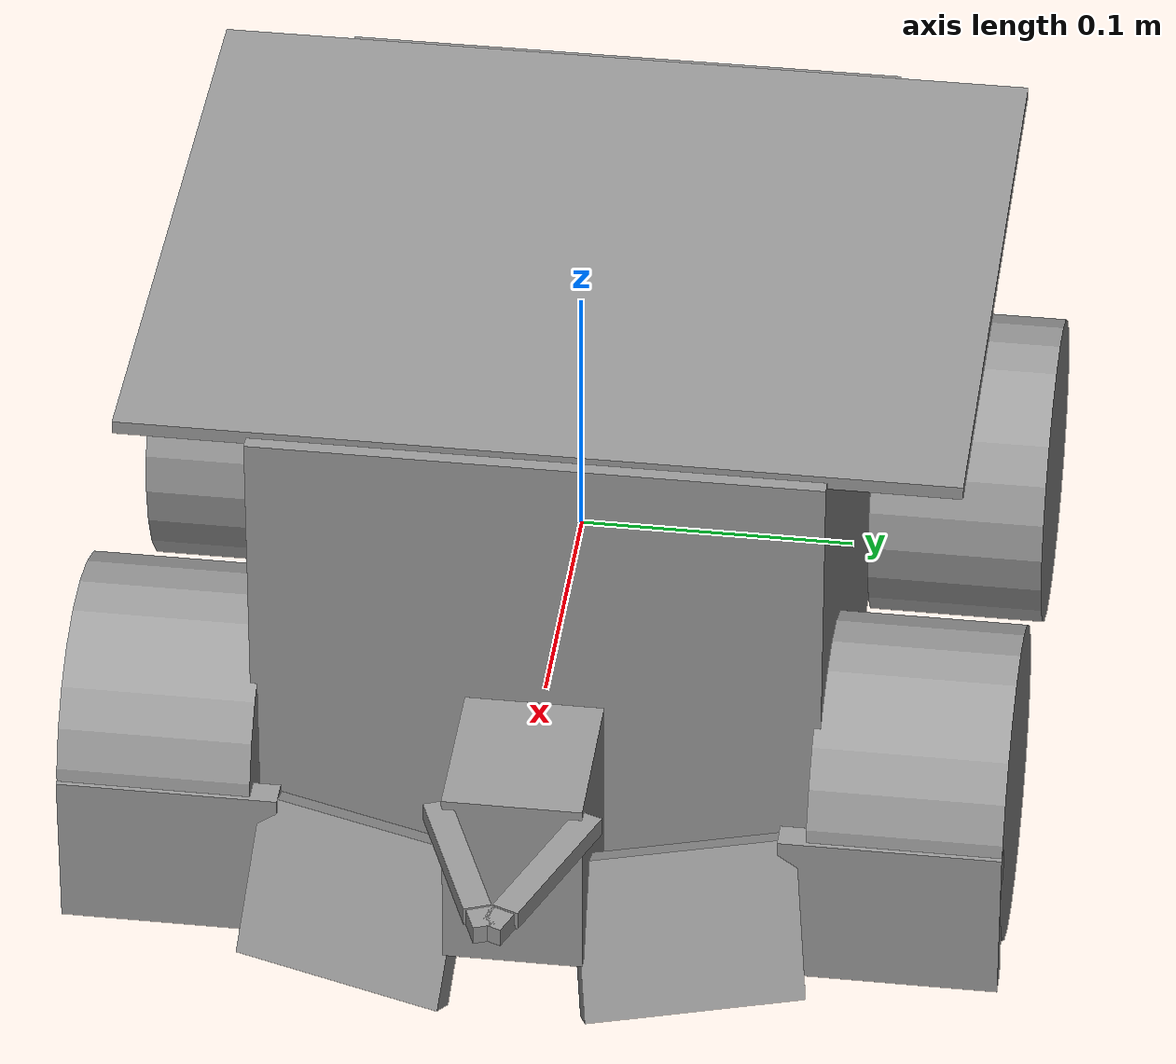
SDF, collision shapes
<?xml version='1.0'?>
<sdf version='1.4'>
	<model name="achilles">

		<static>false</static>

		<link name='base_link'>
			<inertial>
				<mass>3</mass>
				<inertia>
					<ixx>0.006</ixx>
					<ixy>0.0</ixy>
					<ixz>0.0</ixz>
					<iyy>0.006</iyy>
					<iyz>0.0</iyz>
					<izz>0.006</izz>
				</inertia>
			</inertial>
			<collision name='base_link_collision'>
				<pose>0 0 0.03 0 0 0</pose>
				<geometry>
					<box>
						<size>0.26 0.205 0.18</size>
					</box>
				</geometry>
			</collision>

			<visual name='base_link_visual'>
				<pose>0 0 -0.06 0 0 0</pose>
				<geometry>
					<mesh>
						<uri>model://swarmie/meshes/Body.stl</uri>
					</mesh>
				</geometry>
				<material>
					<script>
						<name>Gazebo/Grey</name>
					</script>
				</material>
			</visual>

			<sensor type="ray" name="us_left_sensor">
				<pose>0.15 0.07 0.053 0.0 0.0 0.43633</pose>
				<visualize>false</visualize>
				<update_rate>5</update_rate>
				<ray>
					<scan>
						<horizontal>
							<samples>3</samples>
							<resolution>1.0</resolution>
							<min_angle>-.478</min_angle>
							<max_angle>0.478</max_angle>
						</horizontal>
					</scan>
					<range>
						<min>0.010</min>
						<max>3</max>
						<resolution>0.01</resolution>
					</range>
				</ray>
				<plugin name="us" filename="libhector_gazebo_ros_sonar.so">
					<gaussianNoise>0.005</gaussianNoise>
					<topicName>/achilles/sonarLeft</topicName>
					<frameId>us_center_link</frameId>
				</plugin>
			</sensor>
			<sensor type="ray" name="us_right_sensor">
				<pose>0.15 -0.07 0.053 0.0 0.0 -0.43633</pose>
				<visualize>false</visualize>
				<update_rate>5</update_rate>
				<ray>
					<scan>
						<horizontal>
							<samples>3</samples>
							<resolution>1.0</resolution>
							<min_angle>-.478</min_angle>
							<max_angle>0.478</max_angle>
						</horizontal>
					</scan>
					<range>
						<min>0.010</min>
						<max>3</max>
						<resolution>0.01</resolution>
					</range>
				</ray>
				<plugin name="us" filename="libhector_gazebo_ros_sonar.so">
					<gaussianNoise>0.005</gaussianNoise>
					<topicName>/achilles/sonarRight</topicName>
					<frameId>us_center_link</frameId>
				</plugin>
			</sensor>
			<sensor type="ray" name="us_center_sensor">
				<pose>0.15 0 0.053 0 0 0</pose>
				<visualize>false</visualize>
				<update_rate>5</update_rate>
				<ray>
					<scan>3.0
						<horizontal>
							<samples>3</samples>
							<resolution>1.0</resolution>
							<min_angle>-.478</min_angle>
							<max_angle>0.478</max_angle>
						</horizontal>
					</scan>
					<range>
						<min>0.010</min>
						<max>3</max>
						<resolution>0.01</resolution>
					</range>
				</ray>
				<plugin name="us" filename="libhector_gazebo_ros_sonar.so">
					<gaussianNoise>0.005</gaussianNoise>
					<topicName>/achilles/sonarCenter</topicName>
					<frameId>us_center_link</frameId>
				</plugin>
			</sensor>
			<sensor type="camera" name="camera">
				<pose>0.145 -0.0162 0.088 0.0 0.628 0.0</pose>
				<visualize>false</visualize>
				<update_rate>6.0</update_rate>
				<camera name="head">
					<horizontal_fov>1.0123</horizontal_fov>
					<image>
						<width>320</width>
						<height>240</height>
						<format>B8G8R8</format>
					</image>
					<clip>
						<near>0.02</near>
						<far>300</far>
					</clip>
					<noise>
						<type>gaussian</type>
						<mean>0.0</mean>
						<stddev>0.007</stddev>
					</noise>
				</camera>
				<plugin name="camera_controller" filename="libgazebo_ros_camera.so">
					<alwaysOn>true</alwaysOn>
					<updateRate>0.0</updateRate>
					<cameraName>/achilles/camera</cameraName>
					<imageTopicName>/achilles/camera/image</imageTopicName>
					<cameraInfoTopicName>/achilles/camera/info</cameraInfoTopicName>
					<frameName>camera_link</frameName>
					<hackBaseline>0.1</hackBaseline>
					<distortionK1>0.0</distortionK1>
					<distortionK2>0.0</distortionK2>
					<distortionK3>0.0</distortionK3>
					<distortionT1>0.0</distortionT1>
					<distortionT2>0.0</distortionT2>
					<CxPrime>0.0</CxPrime>
					<Cx>0.0</Cx>
					<Cy>0.0</Cy>
					<focalLength>0.0</focalLength>
				</plugin>
			</sensor>

			<collision name='top_plate_collision'>
				<pose>0 0 0.12 0 0 0</pose>
				<geometry>
					<box>
						<size>0.25 0.30 0.005</size>
					</box>
				</geometry>
			</collision>
			<visual name='top_plate_visual'>
				<pose>0.0006 0 0.12 0 0 0</pose>
				<geometry>
					<mesh>
						<uri>model://swarmie/meshes/CoverPlate.stl</uri>
					</mesh>
				</geometry>
				<material>
					<script>
						<name>Gazebo/FlatBlack</name>
					</script>
				</material>
			</visual>

			<collision name='cow_catcher_front_left_collision'>
				<pose>0.1675 0.06 -0.05 0 -0.4 0.3</pose>
				<geometry>
					<box>
					  <size>0.01 0.08 0.06</size>
					</box>
				</geometry>
			</collision>

			<collision name='wheel_guard_front_left_collision'>
				<pose>0.148 0.13 -0.05 0 0 0</pose>
				<geometry>
					<box>
					  <size>0.01 0.08 0.06</size>
					</box>
				</geometry>
			</collision>

			<collision name='cow_catcher_front_right_collision'>
				<pose>0.1675 -0.06 -0.05 0 -0.4 -0.3</pose>
				<geometry>
					<box>
					  <size>0.01 0.08 0.06</size>
					</box>
				</geometry>
			</collision>

			<collision name='wheel_guard_front_right_collision'>
				<pose>0.148 -0.13 -0.05 0 0 0</pose>
				<geometry>
					<box>
					  <size>0.01 0.08 0.06</size>
					</box>
				</geometry>
			</collision>

			<visual name='cow_catcher_front_visual'>
				<pose>0.1675 0 -0.08 1.57079 0 0</pose>
				<geometry>
					<mesh>
						<uri>model://swarmie/meshes/CowCatcherFront.stl</uri>
						<scale>0.001 0.001 0.001</scale>
					</mesh>
				</geometry>
				<material>
					<script>
						<name>Gazebo/FlatBlack</name>
					</script>
				</material>
			</visual>

			<collision name='cow_catcher_back_lower_collision'>
				<pose>-0.1305 0.0 -0.0665 1.57079 1.05 0.0</pose>
				<geometry>
					<box>
					  <size>0.01 0.03 0.18</size>
					</box>
				</geometry>
			</collision>
			<visual name='cow_catcher_back_visual'>
				<pose>-0.1275 -0.1 -0.04 1.57079 0 3.1415</pose>
				<geometry>
					<mesh>
						<uri>model://swarmie/meshes/CowCatcherRear.stl</uri>
						<scale>0.001 0.001 0.001</scale>
					</mesh>
				</geometry>
				<material>
					<script>
						<name>Gazebo/FlatBlack</name>
					</script>
				</material>
			</visual>

		</link>

		<link name="lidar_link">
			<pose>0.5 0.5 0.5 0 0 0</pose>
			<visual name="lidar_vis">
				<geometry>
					<cylinder>
						<radius>0.1</radius>
						<length>0.1</length>
					</cylinder>
				</geometry>
			</visual>
			<inertial>
				<mass>0.1</mass>
				<inertia>
					<ixx></ixx>
					<iyy></iyy>
					<izz></izz>
					<ixy></ixy>
					<ixz></ixz>
					<iyz></iyz>
				</inertia>
			</inertial>
		</link>

		<joint type="revolute" name="lidar_joint">
			<pose>0 0 0 0 0 0</pose>
			<parent>base_link</parent>
			<child>lidar_link</child>

			<axis>
				<xyz>0 0 1</xyz>
			</axis>
		</joint>

	<link name="gripper_wrist">
			<pose>0.155 0 -0.013 0 0 0</pose>
			<inertial>
				<mass>0.03</mass>
				<inertia>
					<ixx>0.00245</ixx> <!--> 1/12*(mass)(h^2 + d^2) where h,d,w are in meters and mass is in kilograms <-->
					<ixy>0.0</ixy>
					<ixz>0.0</ixz>
					<iyy>0.00185</iyy> <!--> 1/12*(mass)(w^2 + d^2) <-->
					<iyz>0.0</iyz>
					<izz>0.00185</izz> <!--> 1/12*(mass)(w^2 + h^2) <-->
				</inertia>
			</inertial>

			<visual name="visual">
				<pose>0 0 0 0 0 0</pose>
				<geometry>
					<mesh>
						<uri>model://swarmie/meshes/GripperWrist.stl</uri>
					</mesh>
				</geometry>
				<material>
					<script>
						<name>Gazebo/Grey</name>
					</script>
				</material>
			</visual>
			<collision name="collision">
			  <pose>0.0 0 -0.0055 0 0 0</pose>
				<geometry>
					<box>
					  <size>0.07 0.05 0.07</size>
					</box>
				</geometry>
			</collision>
		</link>

		<joint name="gripper_wrist_joint" type="revolute">
			<parent>base_link</parent>
			<child>gripper_wrist</child>
			<pose>-0.0227 0 -0.0105 0 0 0</pose>
			<axis>
				<xyz>0 1 0</xyz>
				<limit>
					<upper>0.7</upper>
					<lower>0.0</lower>
				</limit>
				<dynamics>
				  <damping>0.5</damping>
				</dynamics>
			</axis>
		</joint>

		<link name="gripper_left_finger">
			<pose>0.214 0.016 0.0095 0 0 0</pose>
			<inertial>
				<mass>0.005</mass>
				<inertia>
					<ixx>0.0000833</ixx>
					<ixy>0.0</ixy>
					<ixz>0.0</ixz>
					<iyy>0.0005417</iyy>
					<iyz>0.0</iyz>
					<izz>0.0006083</izz>
				</inertia>
			</inertial>
			<collision name="collision">
				<pose>0 0 0 0 0 -0.38</pose>
				<geometry>
					<box>
						<size>0.06 0.01 0.007</size>
					</box>
				</geometry>
				<surface>
					<friction>
						<ode>
							<mu>0.8</mu>
							<mu2>0.7</mu2>
						</ode>
					</friction>
				</surface>
			</collision>
			<collision name="collision2">
				<pose>0.033 -0.014 0.000 0 0 -0.38</pose>
				<geometry>
					<box>
						<size>0.01 0.01 0.007</size>
					</box>
				</geometry>
				<surface>
					<friction>
						<ode>
							<mu>0.8</mu>
							<mu2>0.7</mu2>
						</ode>
					</friction>
				</surface>
			</collision>
			<visual name="visual">
				<pose>0 0 0 0 0 0.0</pose>
				<geometry>
					<mesh>
						<uri>model://swarmie/meshes/GripperFingerLeft.stl</uri>
					</mesh>
				</geometry>
				<material>
					<script>
						<name>Gazebo/Grey</name>
					</script>
				</material>
			</visual>
			<sensor name='finger' type='contact'>
			  <contact>
			    <collision>collision</collision>
			  </contact>
			</sensor>
		</link>

		<joint name ="gripper_left_finger_joint" type="revolute">
			<parent>gripper_wrist</parent>
			<child>gripper_left_finger</child>
			<pose>-0.0324 0.0052 0 0 0 0</pose>
			<axis>
				<xyz>0 0 1</xyz>
				<limit>
					<upper>0.7854</upper>
					<lower>0.0</lower>
				</limit>
				<dynamics>
				  <damping>0.3</damping>
				</dynamics>
			</axis>
		</joint>

		<link name="gripper_right_finger">
			<pose>0.214 -0.016 0.0095 0 0 0</pose>
			<inertial>
 				<mass>0.005</mass>
				<inertia>
					<ixx>0.0000833</ixx>
					<ixy>0.0</ixy>
					<ixz>0.0</ixz>
					<iyy>0.0005417</iyy>
					<iyz>0.0</iyz>
					<izz>0.0006083</izz>
				</inertia>
			</inertial>
			<collision name="collision">
				<pose>0 0 0 0 0 0.38</pose>
				<geometry>
					<box>
						<size>0.06 0.01 0.007</size>
					</box>
				</geometry>
				<surface>
					<friction>
						<ode>
							<mu>0.8</mu>
							<mu2>0.7</mu2>
						</ode>
					</friction>
				</surface>
			</collision>
			<collision name="collision2">
				<pose>0.033 0.014 0.000 0 0 0.38</pose>
				<geometry>
					<box>
						<size>0.01 0.01 0.007</size>
					</box>
				</geometry>
				<surface>
					<friction>
						<ode>
							<mu>0.8</mu>
							<mu2>0.7</mu2>
						</ode>
					</friction>
				</surface>
			</collision>
			<visual name="visual">3.0
				<pose>0 0 0 0 0 0</pose>
				<geometry>
					<mesh>
						<uri>model://swarmie/meshes/GripperFingerRight.stl</uri>
					</mesh>
				</geometry>
				<material>
					<script>
						<name>Gazebo/Grey</name>
					</script>
				</material>
			</visual>
			<sensor name='finger' type='contact'>
			  <contact>
			    <collision>collision</collision>
			  </contact>
			</sensor>
		</link>

		<joint name ="gripper_right_finger_joint" type="revolute">
			<parent>gripper_wrist</parent>
			<child>gripper_right_finger</child>
			<pose>-0.0324 -0.0052 0 0 0 0</pose>
			<axis>
				<xyz>0 0 1</xyz>
				<limit>
					<upper>0.0</upper>
					<lower>-0.7854</lower>
				</limit>
				<dynamics>
				  <damping>0.3</damping>
				</dynamics>
			</axis>
		</joint>

		<link name="left_front_wheel">
			<pose>0.095 0.135 -0.03 0 0 0</pose>
			<inertial>
				<mass>1.0</mass>
				<inertia>
					<ixx>0.000776</ixx>
					<ixy>0.0</ixy>
					<ixz>0.0</ixz>
					<iyy>0.0012</iyy>
					<iyz>0.0</iyz>
					<izz>0.000776</izz>
				</inertia>
			</inertial>
			<collision name="collision">
				<pose>0 0 0 1.5708 0 0</pose>
				<geometry>
					<cylinder>
						<radius>.0575</radius>
						<length>.07</length>
 					</cylinder>
				</geometry>
				<surface>
					<friction>
						<ode>
							<mu>0.8</mu>
							<mu2>0.7</mu2>
						</ode>
					</friction>
				</surface>
			</collision>
			<visual name="visual">
				<geometry>
					<mesh>
						<uri>model://swarmie/meshes/TireWheelLeft.stl</uri>
					</mesh>
				</geometry>
				<material>
					<script>
						<name>Gazebo/Grey</name>
					</script>
				</material>
			</visual>
		</link>

		<joint name="left_front" type="revolute">
			<parent>base_link</parent>
			<child>left_front_wheel</child>
			<axis>
				<xyz>0 1 0</xyz>
			</axis>
		</joint>

		<link name="right_front_wheel">base_link
			<pose>0.095 -0.135 -0.03 0 0 0</pose>
			<inertial>
				<mass>1.0</mass>
				<inertia>
         <ixx>0.000776</ixx>
         <ixy>0.0</ixy>
         <ixz>0.0</ixz>
         <iyy>0.0012</iyy>
         <iyz>0.0</iyz>
         <izz>0.000776</izz>
				</inertia>
			</inertial>
			<collision name="collision">
				<pose>0 0 0 -1.5708 0 0</pose>
				<geometry>
					<cylinder>
						<radius>.0575</radius>
						<length>.07</length>
					</cylinder>
				</geometry>
				<surface>
					<friction>
						<ode>
							<mu>0.8</mu>
							<mu2>0.7</mu2>
						</ode>
					</friction>
				</surface>
			</collision>
			<visual name="visual">
				<geometry>
					<mesh>
						<uri>model://swarmie/meshes/TireWheelRight.stl</uri>
					</mesh>
				</geometry>
				<material>
					<script>
						<name>Gazebo/Grey</name>
					</script>
				</material>
			</visual>
		</link>

		<joint name="right_front" type="revolute">
			<parent>base_link</parent>
			<child>right_front_wheel</child>
			<axis>
				<xyz>0 1 0</xyz>
			</axis>
		</joint>

		<link name="left_rear_wheel">
			<pose>-0.095 0.135 -0.03 0 0 0</pose>
			<inertial>
				<mass>1.0</mass>
				<inertia>
         <ixx>0.000776</ixx>
         <ixy>0.0</ixy>
         <ixz>0.0</ixz>
         <iyy>0.0012</iyy>
         <iyz>0.0</iyz>
         <izz>0.000776</izz>
				</inertia>
			</inertial>
			<collision name="collision">
				<pose>0 0 0 1.5708 0 0</pose>
				<geometry>
					<cylinder>
						<radius>.0575</radius>
						<length>.065</length>
					</cylinder>
				</geometry>
				<surface>
					<friction>
						<ode>
							<mu>0.8</mu>
							<mu2>0.7</mu2>
						</ode>
					</friction>
				</surface>
			</collision>
			<visual name="visual">
				<geometry>
					<mesh>
						<uri>model://swarmie/meshes/TireWheelLeft.stl</uri>
					</mesh>
				</geometry>
				<material>
					<script>
						<name>Gazebo/Grey</name>
					</script>
				</material>
			</visual>
		</link>

		<joint name="left_rear" type="revolute">
			<parent>base_link</parent>
			<child>left_rear_wheel</child>
			<axis>
				<xyz>0 1 0</xyz>
			</axis>
		</joint>

		<link name="right_rear_wheel">
			<pose>-0.095 -0.135 -0.03 0 0 0</pose>
			<inertial>
				<mass>1.0</mass>
				<inertia>
         <ixx>0.000776</ixx>
         <ixy>0.0</ixy>
         <ixz>0.0</ixz>
         <iyy>0.0012</iyy>
         <iyz>0.0</iyz>
         <izz>0.000776</izz>
				</inertia>
			</inertial>
			<collision name="collision">
				<pose>0 0 0 -1.5708 0 0</pose>
				<geometry>
					<cylinder>
						<radius>.0575</radius>
						<length>.07</length>
					</cylinder>
				</geometry>
				<surface>
					<friction>
						<ode>
							<mu>0.8</mu>
							<mu2>0.7</mu2>
						</ode>
					</friction>
				</surface>
			</collision>
			<visual name="visual">
				<geometry>
					<mesh>
						<uri>model://swarmie/meshes/TireWheelRight.stl</uri>
					</mesh>
				</geometry>
				<material>
					<script>
						<name>Gazebo/Grey</name>
					</script>
				</material>
			</visual>
		</link>

		<joint name="right_rear" type="revolute">
			<parent>base_link</parent>
			<child>right_rear_wheel</child>
			<axis>
				<xyz>0 1 0</xyz>
			</axis>
		</joint>

		<!-- Gripper plugin-->
		<plugin name="gripper_sim" filename="libgazebo_plugins_gripper.so">
			<!-- required: joint definitions -->
			<wristJoint>gripper_wrist_joint</wristJoint>
			<leftFingerJoint>gripper_left_finger_joint</leftFingerJoint>
			<rightFingerJoint>gripper_right_finger_joint</rightFingerJoint>

			<!-- required: data input topics for this plugin -->
			<wristTopic>/achilles/wristAngle/cmd</wristTopic>
			<fingerTopic>/achilles/fingerAngle/cmd</fingerTopic>

			<!-- optional: print debug info to the console -->
			<debug>
				<!-- true (debug mode is on) or false (debug mode is off) -->
				<printToConsole>false</printToConsole>
				<!-- time (in simulated seconds) between debug print statements -->
				<printDelayInSeconds>5.0</printDelayInSeconds>
			</debug>

			<!-- optional: the refresh rate of the gripper and all debugging output -->
			<!-- this value is the number of updates performed per second -->
			<!-- warning: low values (i.e. < 100) can cause the gripper to have poor performance -->
			<updateRate>1000.0</updateRate>

			<!-- optional: set the default PID values for the wrist joint -->
			<!-- values in order: Proportional gain, Integral gain, Derivative gain -->
      <wristPID>1.0 0.0 0.0</wristPID>

			<!-- optional: set the default PID values for the finger joints -->
			<!-- values in order: Proportional gain, Integral gain, Derivative gain -->
			<!-- it is always assumed that both fingers use the same PID values -->
      <fingerPID>1.0 0.0 0.0</fingerPID>

			<!-- optional: set the min/max force applicable to the wrist joint in Newtons -->
			<!-- values in order: minimum force, maximum force -->
      <wristForceLimits>-0.5 0.5</wristForceLimits>

			<!-- optional: set the min/max force applicable to the finger joints in Newtons -->
			<!-- values in order: minimum force, maximum force -->
			<!-- it is always assumed that both fingers use the same min/max force values -->
      <fingerForceLimits>-0.5 0.5</fingerForceLimits>
		</plugin>

		<!-- Skid Steer Drive plugin -->
		<plugin name="skid_steer_drive_controller" filename="libgazebo_ros_skid_steer_drive.so">
			<updateRate>10</updateRate>
			<robotNamespace>/</robotNamespace>
			<leftFrontJoint>left_front</leftFrontJoint>
			<rightFrontJoint>right_front</rightFrontJoint>
			<leftRearJoint>left_rear</leftRearJoint>
			<rightRearJoint>right_rear</rightRearJoint>
			<wheelSeparation>0.27</wheelSeparation>
			<wheelDiameter>0.12</wheelDiameter>
			<robotBaseFrame>achilles/base_link</robotBaseFrame>
			<torque>2.8</torque>
			<commandTopic>/achilles/skidsteer</commandTopic>
			<odometryTopic>/achilles/odom</odometryTopic>
			<odometryFrame>achilles/odom</odometryFrame>
			<broadcastTF>0</broadcastTF>base_link
		</plugin>

		<!-- GPS plugin -->
		<plugin name="gps_sim" filename="libhector_gazebo_ros_gps.so">
			<alwaysOn>1</alwaysOn>
			<updateRate>5</updateRate>
			<bodyName>base_link</bodyName>
			<frameId>achilles/base_link</frameId>
			<topicName>/achilles/fix</topicName>
			<referenceLatitude>28.584810</referenceLatitude>
			<referenceLongitude>-80.649650</referenceLongitude>
			<referenceHeading>0.0</referenceHeading>
			<referenceAltitude>10.0</referenceAltitude>
			<offset>0.0 0.0 0.0</offset>
			<drift>0.1 0.1 0</drift>
			<driftFrequency>0.0 0.0 0.0</driftFrequency>
			<gaussianNoise>0.4 0.5 0.0</gaussianNoise>
		</plugin>

		<!-- IMU plugin -->
		<plugin name="imu_sim" filename="libhector_gazebo_ros_imu.so">
			<updateRate>10</updateRate>
			<bodyName>base_link</bodyName>
			<frameId>achilles/base_link</frameId>
			<topicName>/achilles/imu</topicName>
			<xyzOffset>0 0 0</xyzOffset>
			<rpyOffset>0 0 0</rpyOffset>
			<gaussianNoise>0</gaussianNoise>
			<accelDrift>0.5 0.5 0.5</accelDrift>
			<accelGaussianNoise>0.35 0.35 0.3</accelGaussianNoise>
			<rateDrift>0.1 0.1 0.1</rateDrift>
			<rateGaussianNoise>0.05 0.05 0.015</rateGaussianNoise>
			<headingDrift>0.01</headingDrift>
			<headingGaussianNoise>0.01</headingGaussianNoise>
		</plugin>

	</model>
</sdf>
